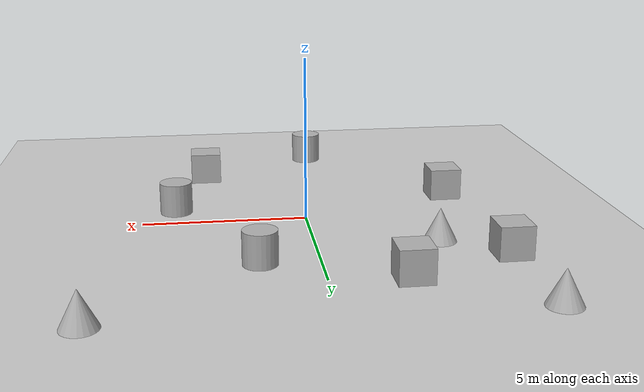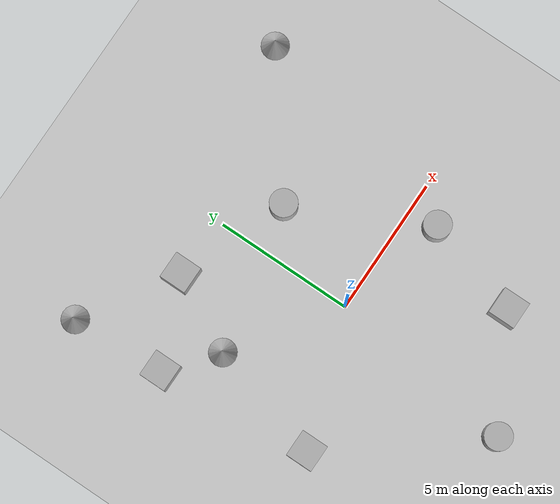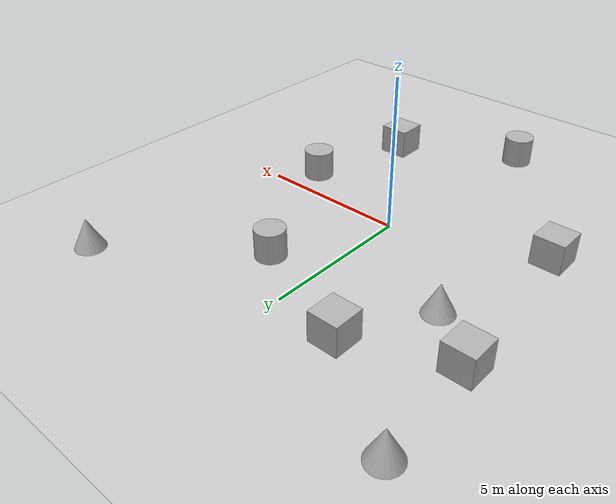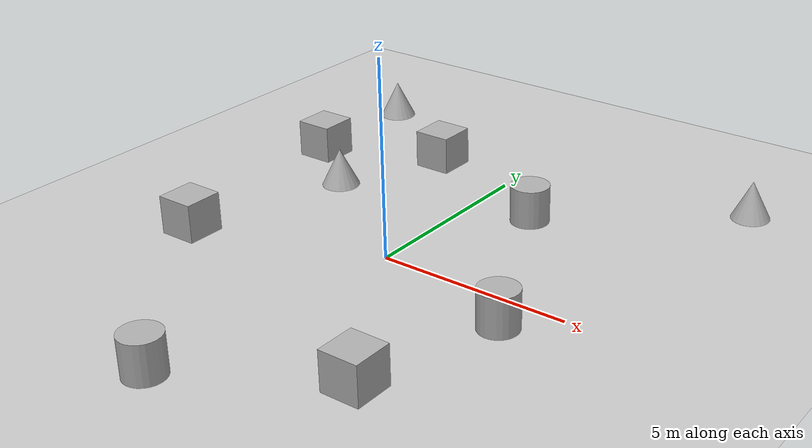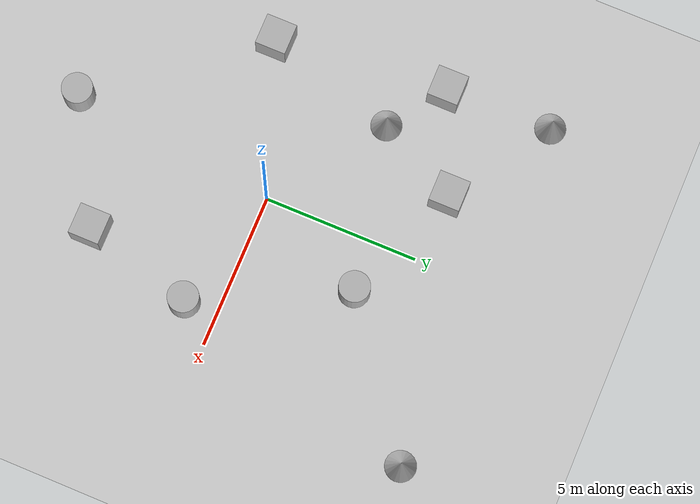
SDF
<sdf version='1.10'>
  <world name='empty'>
    <physics name='1ms' type='ignored'>
      <max_step_size>0.001</max_step_size>
      <real_time_factor>1</real_time_factor>
      <real_time_update_rate>1000</real_time_update_rate>
    </physics>
    <plugin name='gz::sim::systems::Physics' filename='gz-sim-physics-system'/>
    <plugin name='gz::sim::systems::UserCommands' filename='gz-sim-user-commands-system'/>
    <plugin name='gz::sim::systems::SceneBroadcaster' filename='gz-sim-scene-broadcaster-system'/>
    <plugin name='gz::sim::systems::Contact' filename='gz-sim-contact-system'/>
    <gravity>0 0 -9.8000000000000007</gravity>
    <magnetic_field>5.5644999999999998e-06 2.2875799999999999e-05 -4.2388400000000002e-05</magnetic_field>
    <atmosphere type='adiabatic'/>
    <scene>
      <ambient>0.400000006 0.400000006 0.400000006 1</ambient>
      <background>0.699999988 0.699999988 0.699999988 1</background>
      <shadows>true</shadows>
    </scene>
    <model name='ground_plane'>
      <static>true</static>
      <link name='link'>
        <collision name='collision'>
          <geometry>
            <plane>
              <normal>0 0 1</normal>
              <size>100 100</size>
            </plane>
          </geometry>
          <surface>
            <friction>
              <ode/>
            </friction>
            <bounce/>
            <contact/>
          </surface>
        </collision>
        <visual name='visual'>
          <geometry>
            <plane>
              <normal>0 0 1</normal>
              <size>100 100</size>
            </plane>
          </geometry>
          <material>
            <ambient>0.800000012 0.800000012 0.800000012 1</ambient>
            <diffuse>0.800000012 0.800000012 0.800000012 1</diffuse>
            <specular>0.800000012 0.800000012 0.800000012 1</specular>
          </material>
        </visual>
        <pose>0 0 0 0 0 0</pose>
        <inertial>
          <pose>0 0 0 0 0 0</pose>
          <mass>1</mass>
          <inertia>
            <ixx>1</ixx>
            <ixy>0</ixy>
            <ixz>0</ixz>
            <iyy>1</iyy>
            <iyz>0</iyz>
            <izz>1</izz>
          </inertia>
        </inertial>
        <enable_wind>false</enable_wind>
      </link>
      <pose>0 0 0 0 0 0</pose>
      <self_collide>false</self_collide>
    </model>
    <model name='cone'>
      <pose>6.1183627826240556 7.017267019230724 0.5 0 0 0</pose>
      <link name='cone_link'>
        <inertial>
          <inertia>
            <ixx>0.074999999999999997</ixx>
            <ixy>0</ixy>
            <ixz>0</ixz>
            <iyy>0.074999999999999997</iyy>
            <iyz>0</iyz>
            <izz>0.074999999999999997</izz>
          </inertia>
          <mass>1</mass>
          <pose>0 0 0 0 0 0</pose>
        </inertial>
        <collision name='cone_collision'>
          <geometry>
            <cone>
              <radius>0.5</radius>
              <length>1</length>
            </cone>
          </geometry>
          <surface>
            <friction>
              <ode/>
            </friction>
            <bounce/>
            <contact/>
          </surface>
        </collision>
        <visual name='cone_visual'>
          <geometry>
            <cone>
              <radius>0.5</radius>
              <length>1</length>
            </cone>
          </geometry>
          <material>
            <ambient>0.300000012 0.300000012 0.300000012 1</ambient>
            <diffuse>0.699999988 0.699999988 0.699999988 1</diffuse>
            <specular>1 1 1 1</specular>
          </material>
        </visual>
        <pose>0 0 0 0 0 0</pose>
        <enable_wind>false</enable_wind>
      </link>
      <static>false</static>
      <self_collide>false</self_collide>
    </model>
    <model name='box'>
      <pose>3.0023419418712667 -4.6212880625415345 0.5 0 0 0</pose>
      <link name='box_link'>
        <inertial>
          <inertia>
            <ixx>0.16666</ixx>
            <ixy>0</ixy>
            <ixz>0</ixz>
            <iyy>0.16666</iyy>
            <iyz>0</iyz>
            <izz>0.16666</izz>
          </inertia>
          <mass>1</mass>
          <pose>0 0 0 0 0 0</pose>
        </inertial>
        <collision name='box_collision'>
          <geometry>
            <box>
              <size>1 1 1</size>
            </box>
          </geometry>
          <surface>
            <friction>
              <ode/>
            </friction>
            <bounce/>
            <contact/>
          </surface>
        </collision>
        <visual name='box_visual'>
          <geometry>
            <box>
              <size>1 1 1</size>
            </box>
          </geometry>
          <material>
            <ambient>0.300000012 0.300000012 0.300000012 1</ambient>
            <diffuse>0.699999988 0.699999988 0.699999988 1</diffuse>
            <specular>1 1 1 1</specular>
          </material>
        </visual>
        <pose>0 0 0 0 0 0</pose>
        <enable_wind>false</enable_wind>
      </link>
      <static>false</static>
      <self_collide>false</self_collide>
    </model>
    <model name='box_0'>
      <pose>-2.2212292230044026 5.1995782663536492 0.5 0 0 0</pose>
      <link name='box_link'>
        <inertial>
          <inertia>
            <ixx>0.16666</ixx>
            <ixy>0</ixy>
            <ixz>0</ixz>
            <iyy>0.16666</iyy>
            <iyz>0</iyz>
            <izz>0.16666</izz>
          </inertia>
          <mass>1</mass>
          <pose>0 0 0 0 0 0</pose>
        </inertial>
        <collision name='box_collision'>
          <geometry>
            <box>
              <size>1 1 1</size>
            </box>
          </geometry>
          <surface>
            <friction>
              <ode/>
            </friction>
            <bounce/>
            <contact/>
          </surface>
        </collision>
        <visual name='box_visual'>
          <geometry>
            <box>
              <size>1 1 1</size>
            </box>
          </geometry>
          <material>
            <ambient>0.300000012 0.300000012 0.300000012 1</ambient>
            <diffuse>0.699999988 0.699999988 0.699999988 1</diffuse>
            <specular>1 1 1 1</specular>
          </material>
        </visual>
        <pose>0 0 0 0 0 0</pose>
        <enable_wind>false</enable_wind>
      </link>
      <static>false</static>
      <self_collide>false</self_collide>
    </model>
    <model name='cylinder'>
      <pose>1.6777273013024896 3.6470394742158883 0.5 0 0 0</pose>
      <link name='cylinder_link'>
        <inertial>
          <inertia>
            <ixx>0.14580000000000001</ixx>
            <ixy>0</ixy>
            <ixz>0</ixz>
            <iyy>0.14580000000000001</iyy>
            <iyz>0</iyz>
            <izz>0.125</izz>
          </inertia>
          <mass>1</mass>
          <pose>0 0 0 0 0 0</pose>
        </inertial>
        <collision name='cylinder_collision'>
          <geometry>
            <cylinder>
              <radius>0.5</radius>
              <length>1</length>
            </cylinder>
          </geometry>
          <surface>
            <friction>
              <ode/>
            </friction>
            <bounce/>
            <contact/>
          </surface>
        </collision>
        <visual name='cylinder_visual'>
          <geometry>
            <cylinder>
              <radius>0.5</radius>
              <length>1</length>
            </cylinder>
          </geometry>
          <material>
            <ambient>0.300000012 0.300000012 0.300000012 1</ambient>
            <diffuse>0.699999988 0.699999988 0.699999988 1</diffuse>
            <specular>1 1 1 1</specular>
          </material>
        </visual>
        <pose>0 0 0 0 0 0</pose>
        <enable_wind>false</enable_wind>
      </link>
      <static>false</static>
      <self_collide>false</self_collide>
    </model>
    <model name='cylinder_0'>
      <pose>3.9910086413422867 -1.0664492417393525 0.5 0 0 0</pose>
      <link name='cylinder_link'>
        <inertial>
          <inertia>
            <ixx>0.14580000000000001</ixx>
            <ixy>0</ixy>
            <ixz>0</ixz>
            <iyy>0.14580000000000001</iyy>
            <iyz>0</iyz>
            <izz>0.125</izz>
          </inertia>
          <mass>1</mass>
          <pose>0 0 0 0 0 0</pose>
        </inertial>
        <collision name='cylinder_collision'>
          <geometry>
            <cylinder>
              <radius>0.5</radius>
              <length>1</length>
            </cylinder>
          </geometry>
          <surface>
            <friction>
              <ode/>
            </friction>
            <bounce/>
            <contact/>
          </surface>
        </collision>
        <visual name='cylinder_visual'>
          <geometry>
            <cylinder>
              <radius>0.5</radius>
              <length>1</length>
            </cylinder>
          </geometry>
          <material>
            <ambient>0.300000012 0.300000012 0.300000012 1</ambient>
            <diffuse>0.699999988 0.699999988 0.699999988 1</diffuse>
            <specular>1 1 1 1</specular>
          </material>
        </visual>
        <pose>0 0 0 0 0 0</pose>
        <enable_wind>false</enable_wind>
      </link>
      <static>false</static>
      <self_collide>false</self_collide>
    </model>
    <model name='cone_0'>
      <pose>-3.6171541829048461 2.5507195843585304 0.5 0 0 0</pose>
      <link name='cone_link'>
        <inertial>
          <inertia>
            <ixx>0.074999999999999997</ixx>
            <ixy>0</ixy>
            <ixz>0</ixz>
            <iyy>0.074999999999999997</iyy>
            <iyz>0</iyz>
            <izz>0.074999999999999997</izz>
          </inertia>
          <mass>1</mass>
          <pose>0 0 0 0 0 0</pose>
        </inertial>
        <collision name='cone_collision'>
          <geometry>
            <cone>
              <radius>0.5</radius>
              <length>1</length>
            </cone>
          </geometry>
          <surface>
            <friction>
              <ode/>
            </friction>
            <bounce/>
            <contact/>
          </surface>
        </collision>
        <visual name='cone_visual'>
          <geometry>
            <cone>
              <radius>0.5</radius>
              <length>1</length>
            </cone>
          </geometry>
          <material>
            <ambient>0.300000012 0.300000012 0.300000012 1</ambient>
            <diffuse>0.699999988 0.699999988 0.699999988 1</diffuse>
            <specular>1 1 1 1</specular>
          </material>
        </visual>
        <pose>0 0 0 0 0 0</pose>
        <enable_wind>false</enable_wind>
      </link>
      <static>false</static>
      <self_collide>false</self_collide>
    </model>
    <model name='box_1'>
      <pose>-5.319234706952809 3.8944809613527069 0.5 0 0 0</pose>
      <link name='box_link'>
        <inertial>
          <inertia>
            <ixx>0.16666</ixx>
            <ixy>0</ixy>
            <ixz>0</ixz>
            <iyy>0.16666</iyy>
            <iyz>0</iyz>
            <izz>0.16666</izz>
          </inertia>
          <mass>1</mass>
          <pose>0 0 0 0 0 0</pose>
        </inertial>
        <collision name='box_collision'>
          <geometry>
            <box>
              <size>1 1 1</size>
            </box>
          </geometry>
          <surface>
            <friction>
              <ode/>
            </friction>
            <bounce/>
            <contact/>
          </surface>
        </collision>
        <visual name='box_visual'>
          <geometry>
            <box>
              <size>1 1 1</size>
            </box>
          </geometry>
          <material>
            <ambient>0.300000012 0.300000012 0.300000012 1</ambient>
            <diffuse>0.699999988 0.699999988 0.699999988 1</diffuse>
            <specular>1 1 1 1</specular>
          </material>
        </visual>
        <pose>0 0 0 0 0 0</pose>
        <enable_wind>false</enable_wind>
      </link>
      <static>false</static>
      <self_collide>false</self_collide>
    </model>
    <model name='cylinder_1'>
      <pose>-0.78737577411704507 -6.7112766310326855 0.5 0 0 0</pose>
      <link name='cylinder_link'>
        <inertial>
          <inertia>
            <ixx>0.14580000000000001</ixx>
            <ixy>0</ixy>
            <ixz>0</ixz>
            <iyy>0.14580000000000001</iyy>
            <iyz>0</iyz>
            <izz>0.125</izz>
          </inertia>
          <mass>1</mass>
          <pose>0 0 0 0 0 0</pose>
        </inertial>
        <collision name='cylinder_collision'>
          <geometry>
            <cylinder>
              <radius>0.5</radius>
              <length>1</length>
            </cylinder>
          </geometry>
          <surface>
            <friction>
              <ode/>
            </friction>
            <bounce/>
            <contact/>
          </surface>
        </collision>
        <visual name='cylinder_visual'>
          <geometry>
            <cylinder>
              <radius>0.5</radius>
              <length>1</length>
            </cylinder>
          </geometry>
          <material>
            <ambient>0.300000012 0.300000012 0.300000012 1</ambient>
            <diffuse>0.699999988 0.699999988 0.699999988 1</diffuse>
            <specular>1 1 1 1</specular>
          </material>
        </visual>
        <pose>0 0 0 0 0 0</pose>
        <enable_wind>false</enable_wind>
      </link>
      <static>false</static>
      <self_collide>false</self_collide>
    </model>
    <model name='cone_1'>
      <pose>-5.5045567762917287 7.3372829961294066 0.5 0 0 0</pose>
      <link name='cone_link'>
        <inertial>
          <inertia>
            <ixx>0.074999999999999997</ixx>
            <ixy>0</ixy>
            <ixz>0</ixz>
            <iyy>0.074999999999999997</iyy>
            <iyz>0</iyz>
            <izz>0.074999999999999997</izz>
          </inertia>
          <mass>1</mass>
          <pose>0 0 0 0 0 0</pose>
        </inertial>
        <collision name='cone_collision'>
          <geometry>
            <cone>
              <radius>0.5</radius>
              <length>1</length>
            </cone>
          </geometry>
          <surface>
            <friction>
              <ode/>
            </friction>
            <bounce/>
            <contact/>
          </surface>
        </collision>
        <visual name='cone_visual'>
          <geometry>
            <cone>
              <radius>0.5</radius>
              <length>1</length>
            </cone>
          </geometry>
          <material>
            <ambient>0.300000012 0.300000012 0.300000012 1</ambient>
            <diffuse>0.699999988 0.699999988 0.699999988 1</diffuse>
            <specular>1 1 1 1</specular>
          </material>
        </visual>
        <pose>0 0 0 0 0 0</pose>
        <enable_wind>false</enable_wind>
      </link>
      <static>false</static>
      <self_collide>false</self_collide>
    </model>
    <model name='box_2'>
      <pose>-4.7805013531723564 -1.6809759443285808 0.5 0 0 0</pose>
      <link name='box_link'>
        <inertial>
          <inertia>
            <ixx>0.16666</ixx>
            <ixy>0</ixy>
            <ixz>0</ixz>
            <iyy>0.16666</iyy>
            <iyz>0</iyz>
            <izz>0.16666</izz>
          </inertia>
          <mass>1</mass>
          <pose>0 0 0 0 0 0</pose>
        </inertial>
        <collision name='box_collision'>
          <geometry>
            <box>
              <size>1 1 1</size>
            </box>
          </geometry>
          <surface>
            <friction>
              <ode/>
            </friction>
            <bounce/>
            <contact/>
          </surface>
        </collision>
        <visual name='box_visual'>
          <geometry>
            <box>
              <size>1 1 1</size>
            </box>
          </geometry>
          <material>
            <ambient>0.300000012 0.300000012 0.300000012 1</ambient>
            <diffuse>0.699999988 0.699999988 0.699999988 1</diffuse>
            <specular>1 1 1 1</specular>
          </material>
        </visual>
        <pose>0 0 0 0 0 0</pose>
        <enable_wind>false</enable_wind>
      </link>
      <static>false</static>
      <self_collide>false</self_collide>
    </model>
    <light name='sun' type='directional'>
      <pose>0 0 10 0 0 0</pose>
      <cast_shadows>true</cast_shadows>
      <intensity>1</intensity>
      <direction>-0.5 0.10000000000000001 -0.90000000000000002</direction>
      <diffuse>0.800000012 0.800000012 0.800000012 1</diffuse>
      <specular>0.200000003 0.200000003 0.200000003 1</specular>
      <attenuation>
        <range>1000</range>
        <linear>0.01</linear>
        <constant>0.90000000000000002</constant>
        <quadratic>0.001</quadratic>
      </attenuation>
      <spot>
        <inner_angle>0</inner_angle>
        <outer_angle>0</outer_angle>
        <falloff>0</falloff>
      </spot>
    </light>
  </world>
</sdf>
